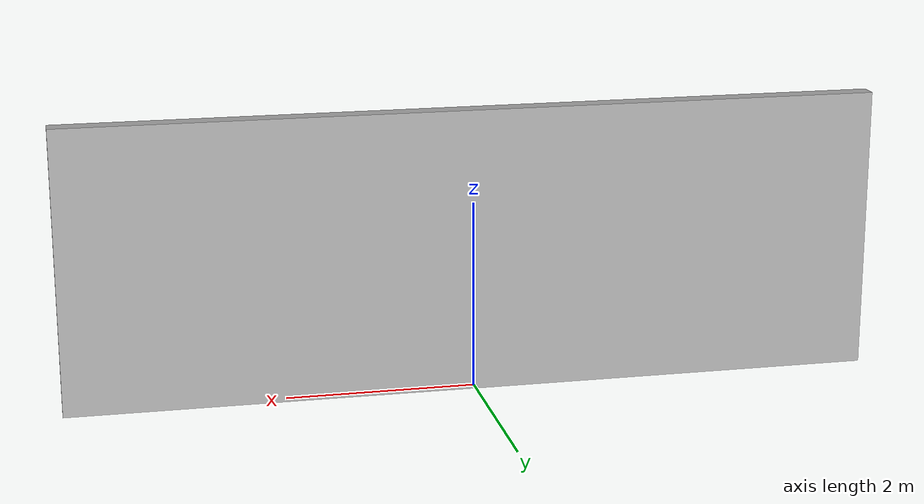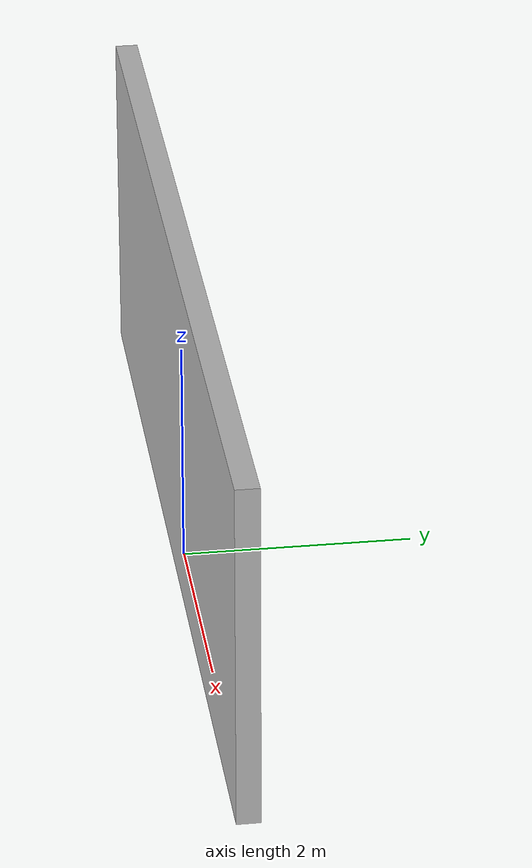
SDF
<?xml version="1.0" ?>
<sdf version="1.5">
  <model name="wall3">
    <static>true</static>
    <link name="chassis">
      <pose>0 0 1.5 0 0 0</pose>
      <collision name="collision">
        <geometry>
          <box>
            <size>8.6 0.2 3.0</size>
          </box>
        </geometry>
      </collision>
      <visual name="visual">
        <geometry>
          <mesh>
            <uri>model://wall3/meshes/simple_box.dae</uri>
            <scale>8.6 0.2 3.0</scale>
          </mesh>
        </geometry>
        <material>
          <script>
            <uri>model://wall3/materials/scripts</uri>
            <uri>model://wall3/materials/textures</uri>
            <name>wall3/Diffuse</name>
          </script>
        </material>
      </visual>
    </link>
  </model>
</sdf>
